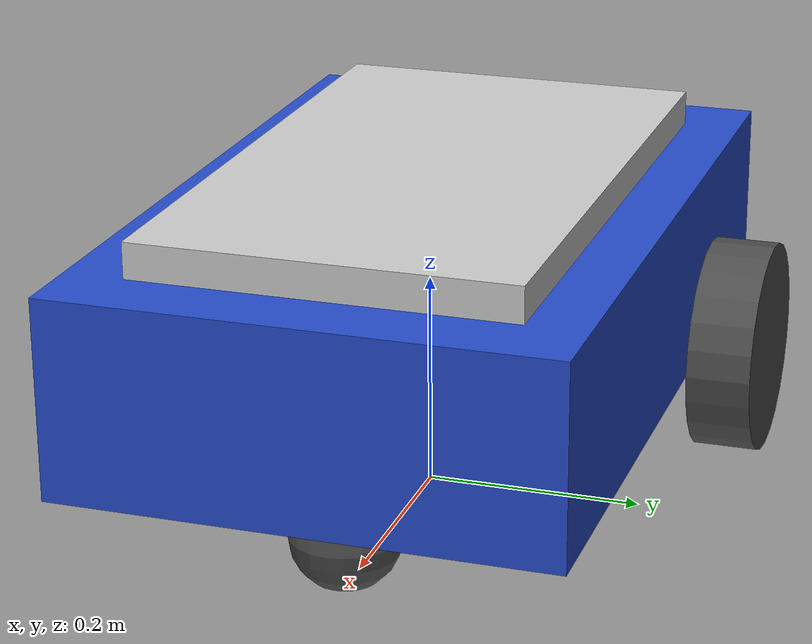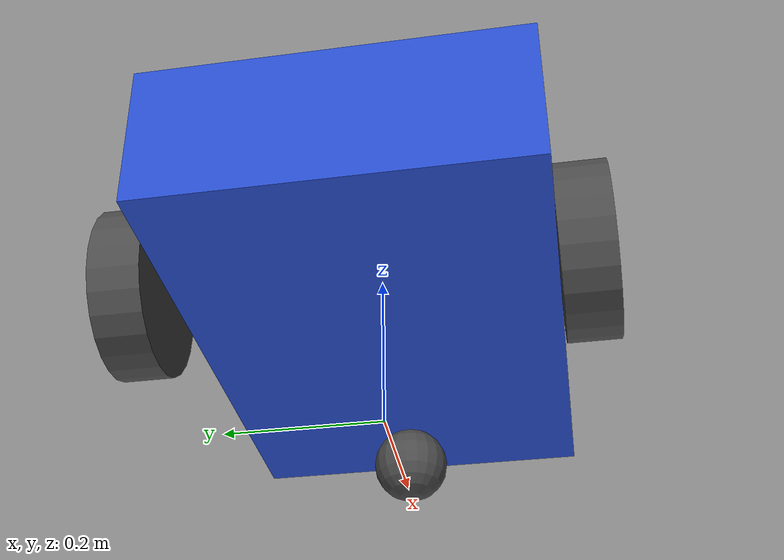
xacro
<?xml version="1.0"?>
<robot xmlns:xacro="http://www.ros.org/wiki/xacro" >

  <xacro:property name="base_length" value="0.7" />
  <xacro:property name="base_width" value="0.45" />
  <xacro:property name="base_height" value="0.18" />
  <xacro:property name="wheel_radius" value="0.10" />
  <xacro:property name="wheel_length" value="0.06" />

  <link name="base_footprint" />

  <link name="base_link">
    <visual>
      <geometry>
        <box size="${base_length} ${base_width} ${base_height}"/>
      </geometry>
      <origin xyz="0 0 ${base_height / 2.0}" rpy="0 0 0" />
      <material name="dark_blue" />
    </visual>

    <visual>
      <geometry>
        <box size="${base_length * 0.82} ${base_width * 0.76} ${base_height * 0.18}"/>
      </geometry>
      <origin xyz="0 0 ${base_height + base_height * 0.09}" rpy="0 0 0" />
      <material name="light_grey" />
    </visual>

    <visual>
      <geometry>
        <box size="${base_length * 0.14} ${base_width * 0.90} ${base_height * 0.22}"/>
      </geometry>
      <origin xyz="${base_length * 0.25} 0 ${base_height * 0.60}" rpy="0 0 0" />
      <material name="black" />
    </visual>

    <collision>
      <geometry>
        <box size="${base_length} ${base_width} ${base_height}"/>
      </geometry>
      <origin xyz="0 0 ${base_height / 2.0}" rpy="0 0 0" />
    </collision>

    <xacro:box_inertia m="5.0" x="${base_length}" y="${base_width}" z="${base_height}"
                       o_xyz="0 0 ${base_height / 2.0}" o_rpy="0 0 0" />
  </link>

  <xacro:macro name="wheel_link" params="prefix">
  <link name="${prefix}_wheel_link">
    <visual>
      <geometry>
        <cylinder radius="${wheel_radius}" length="${wheel_length}"/>
      </geometry>
      <origin xyz="0 0 0" rpy="${pi / 2.0} 0 0" />
      <material name="dark_grey" />
    </visual>

    <visual>
      <geometry>
        <cylinder radius="${wheel_radius * 0.72}" length="${wheel_length * 0.18}"/>
      </geometry>
      <origin xyz="0 0 0" rpy="${pi / 2.0} 0 0" />
      <material name="light_grey" />
    </visual>

    <collision>
      <geometry>
        <cylinder radius="${wheel_radius}" length="${wheel_length}"/>
      </geometry>
      <origin xyz="0 0 0" rpy="${pi / 2.0} 0 0" />
    </collision>

    <xacro:cylinder_inertia m="1.0" r="${wheel_radius}" h="${wheel_length}"
                            o_xyz="0 0 0" o_rpy="${pi / 2.0} 0 0" />
  </link>
  </xacro:macro>

  <xacro:wheel_link prefix="left" />
  <xacro:wheel_link prefix="right" />

  <link name="caster_wheel_link">
    <visual>
      <geometry>
        <sphere radius="${wheel_radius / 2.0}" />
      </geometry>
      <origin xyz="0 0 0" rpy="0 0 0" />
      <material name="dark_grey" />
    </visual>

    <collision>
      <geometry>
        <sphere radius="${wheel_radius / 2.0}" />
      </geometry>
      <origin xyz="0 0 0" rpy="0 0 0" />
    </collision>

    <xacro:sphere_inertia m="0.5" r="${wheel_radius / 2.0}" o_xyz="0 0 0" o_rpy="0 0 0" />
  </link>

  <joint name="base_joint" type="fixed">
    <parent link="base_footprint"/>
    <child link="base_link"/>
    <origin xyz="0 0 ${wheel_radius}" rpy="0 0 0"/>
  </joint>

  <joint name="base_left_wheel_joint" type="continuous">
    <parent link="base_link"/>
    <child link="left_wheel_link"/>
    <origin xyz="${-base_length / 4.0} ${(base_width + wheel_length) / 2.0} 0" rpy="0 0 0"/>
    <axis xyz="0 1 0"/>
  </joint>

  <joint name="base_right_wheel_joint" type="continuous">
    <parent link="base_link"/>
    <child link="right_wheel_link"/>
    <origin xyz="${-base_length / 4.0} ${-(base_width + wheel_length) / 2.0} 0" rpy="0 0 0"/>
    <axis xyz="0 1 0"/>
  </joint>

  <joint name="base_caster_wheel_joint" type="fixed">
    <parent link="base_link"/>
    <child link="caster_wheel_link"/>
    <origin xyz="${base_length / 3.0} 0 ${-wheel_radius / 2.0}" rpy="0 0 0"/>
  </joint>

</robot>
